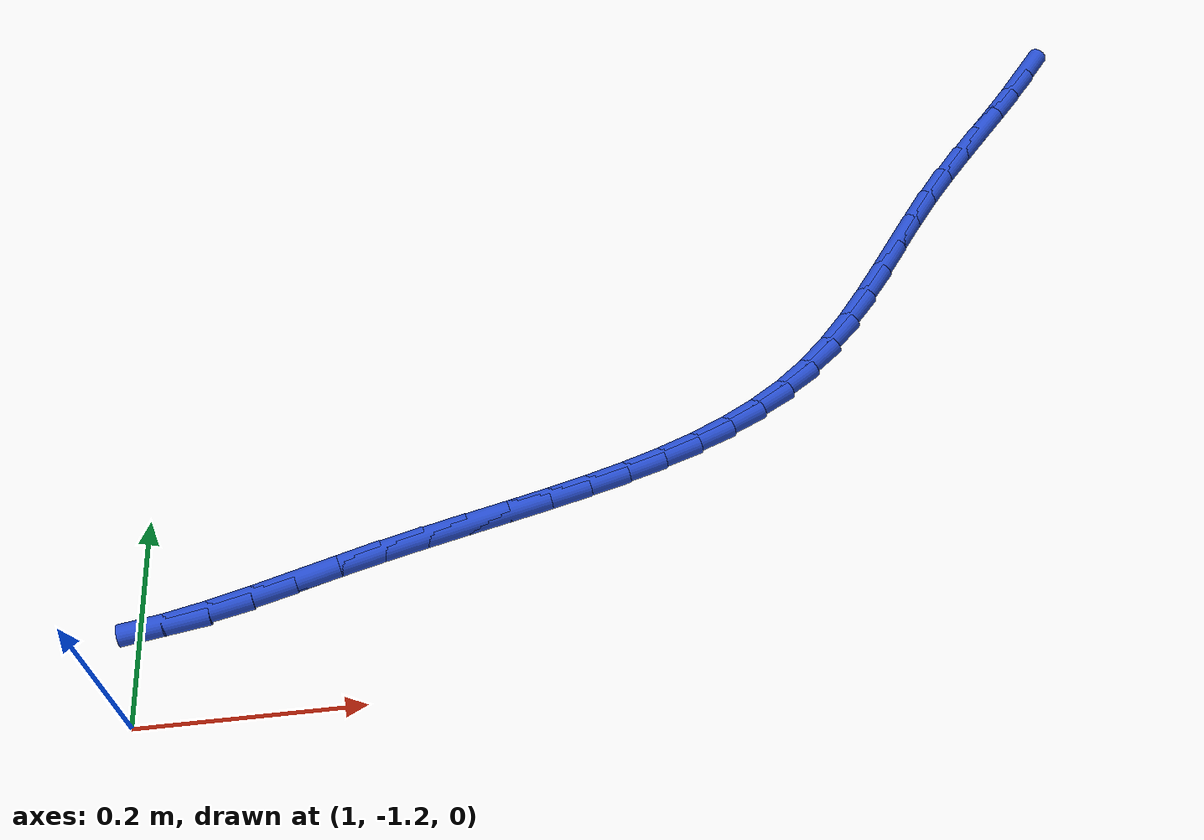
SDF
<sdf version="1.6">
 <world name="default">
  <model name="ground_plane">
   <static>1</static>
   <link name="link">
    <collision name="collision">
     <geometry><plane><normal>0 0 1</normal><size>100 100</size></plane></geometry>
     <surface><friction><ode><mu>100</mu><mu2>50</mu2></ode></friction></surface>
    </collision>
    <visual name="visual">
     <cast_shadows>0</cast_shadows>
     <geometry><plane><normal>0 0 1</normal><size>100 100</size></plane></geometry>
     <material>
      <script><uri>file://media/materials/scripts/gazebo.material</uri><name>Gazebo/WhiteGlow</name></script>
     </material>
    </visual>
   </link>
  </model>
  <model name="line">
   <link name="link_106">
    <pose>1.945905061161351 -0.5298927983858595 0.01 0 1.57 0.8780896600352804</pose>
    <collision name="collision">
     <geometry><cylinder><radius>0.01</radius><length>0.08</length></cylinder></geometry>
    </collision>
    <visual name="visual">
     <material>
      <script><name>Gazebo/Blue</name><uri>file://media/materials/scripts/gazebo.material</uri></script>
     </material>
     <geometry><cylinder><radius>0.01</radius><length>0.08</length></cylinder></geometry>
    </visual>
   </link>
   <link name="link_107">
    <pose>1.922250252735744 -0.5583961151190563 0.01 0 1.57 0.8476944145062164</pose>
    <collision name="collision">
     <geometry><cylinder><radius>0.01</radius><length>0.08</length></cylinder></geometry>
    </collision>
    <visual name="visual">
     <material>
      <script><name>Gazebo/Blue</name><uri>file://media/materials/scripts/gazebo.material</uri></script>
     </material>
     <geometry><cylinder><radius>0.01</radius><length>0.08</length></cylinder></geometry>
    </visual>
   </link>
   <link name="link_108">
    <pose>1.8976270090271914 -0.5862955649557715 0.01 0 1.57 0.8319195566522775</pose>
    <collision name="collision">
     <geometry><cylinder><radius>0.01</radius><length>0.08</length></cylinder></geometry>
    </collision>
    <visual name="visual">
     <material>
      <script><name>Gazebo/Blue</name><uri>file://media/materials/scripts/gazebo.material</uri></script>
     </material>
     <geometry><cylinder><radius>0.01</radius><length>0.08</length></cylinder></geometry>
    </visual>
   </link>
   <link name="link_109">
    <pose>1.87243988189082 -0.6139423751732529 0.01 0 1.57 0.8305521420777027</pose>
    <collision name="collision">
     <geometry><cylinder><radius>0.01</radius><length>0.08</length></cylinder></geometry>
    </collision>
    <visual name="visual">
     <material>
      <script><name>Gazebo/Blue</name><uri>file://media/materials/scripts/gazebo.material</uri></script>
     </material>
     <geometry><cylinder><radius>0.01</radius><length>0.08</length></cylinder></geometry>
    </visual>
   </link>
   <link name="link_110">
    <pose>1.8470934231817562 -0.6416877730487457 0.01 0 1.57 0.8433852470249344</pose>
    <collision name="collision">
     <geometry><cylinder><radius>0.01</radius><length>0.08</length></cylinder></geometry>
    </collision>
    <visual name="visual">
     <material>
      <script><name>Gazebo/Blue</name><uri>file://media/materials/scripts/gazebo.material</uri></script>
     </material>
     <geometry><cylinder><radius>0.01</radius><length>0.08</length></cylinder></geometry>
    </visual>
   </link>
   <link name="link_111">
    <pose>1.8219921847551248 -0.6698829858594975 0.01 0 1.57 0.8702265187306071</pose>
    <collision name="collision">
     <geometry><cylinder><radius>0.01</radius><length>0.08</length></cylinder></geometry>
    </collision>
    <visual name="visual">
     <material>
      <script><name>Gazebo/Blue</name><uri>file://media/materials/scripts/gazebo.material</uri></script>
     </material>
     <geometry><cylinder><radius>0.01</radius><length>0.08</length></cylinder></geometry>
    </visual>
   </link>
   <link name="link_112">
    <pose>1.797540718466052 -0.6988792408827547 0.01 0 1.57 0.9065402402060952</pose>
    <collision name="collision">
     <geometry><cylinder><radius>0.01</radius><length>0.08</length></cylinder></geometry>
    </collision>
    <visual name="visual">
     <material>
      <script><name>Gazebo/Blue</name><uri>file://media/materials/scripts/gazebo.material</uri></script>
     </material>
     <geometry><cylinder><radius>0.01</radius><length>0.08</length></cylinder></geometry>
    </visual>
   </link>
   <link name="link_113">
    <pose>1.7740333559186792 -0.7289034380376851 0.01 0 1.57 0.9308095016877311</pose>
    <collision name="collision">
     <geometry><cylinder><radius>0.01</radius><length>0.08</length></cylinder></geometry>
    </collision>
    <visual name="visual">
     <material>
      <script><name>Gazebo/Blue</name><uri>file://media/materials/scripts/gazebo.material</uri></script>
     </material>
     <geometry><cylinder><radius>0.01</radius><length>0.08</length></cylinder></geometry>
    </visual>
   </link>
   <link name="link_114">
    <pose>1.7512105427741786 -0.7595576993523603 0.01 0 1.57 0.9366721319215088</pose>
    <collision name="collision">
     <geometry><cylinder><radius>0.01</radius><length>0.08</length></cylinder></geometry>
    </collision>
    <visual name="visual">
     <material>
      <script><name>Gazebo/Blue</name><uri>file://media/materials/scripts/gazebo.material</uri></script>
     </material>
     <geometry><cylinder><radius>0.01</radius><length>0.08</length></cylinder></geometry>
    </visual>
   </link>
   <link name="link_115">
    <pose>1.7286391143397803 -0.7902483160846634 0.01 0 1.57 0.9240456704423754</pose>
    <collision name="collision">
     <geometry><cylinder><radius>0.01</radius><length>0.08</length></cylinder></geometry>
    </collision>
    <visual name="visual">
     <material>
      <script><name>Gazebo/Blue</name><uri>file://media/materials/scripts/gazebo.material</uri></script>
     </material>
     <geometry><cylinder><radius>0.01</radius><length>0.08</length></cylinder></geometry>
    </visual>
   </link>
   <link name="link_116">
    <pose>1.7058858450876198 -0.8203815108710857 0.01 0 1.57 0.8922225173752335</pose>
    <collision name="collision">
     <geometry><cylinder><radius>0.01</radius><length>0.08</length></cylinder></geometry>
    </collision>
    <visual name="visual">
     <material>
      <script><name>Gazebo/Blue</name><uri>file://media/materials/scripts/gazebo.material</uri></script>
     </material>
     <geometry><cylinder><radius>0.01</radius><length>0.08</length></cylinder></geometry>
    </visual>
   </link>
   <link name="link_117">
    <pose>1.6825175094898308 -0.8493635063481205 0.01 0 1.57 0.8399459767029219</pose>
    <collision name="collision">
     <geometry><cylinder><radius>0.01</radius><length>0.08</length></cylinder></geometry>
    </collision>
    <visual name="visual">
     <material>
      <script><name>Gazebo/Blue</name><uri>file://media/materials/scripts/gazebo.material</uri></script>
     </material>
     <geometry><cylinder><radius>0.01</radius><length>0.08</length></cylinder></geometry>
    </visual>
   </link>
   <link name="link_118">
    <pose>1.6581008820185479 -0.8766005251522612 0.01 0 1.57 0.7657166346580935</pose>
    <collision name="collision">
     <geometry><cylinder><radius>0.01</radius><length>0.08</length></cylinder></geometry>
    </collision>
    <visual name="visual">
     <material>
      <script><name>Gazebo/Blue</name><uri>file://media/materials/scripts/gazebo.material</uri></script>
     </material>
     <geometry><cylinder><radius>0.01</radius><length>0.08</length></cylinder></geometry>
    </visual>
   </link>
   <link name="link_119">
    <pose>1.632202737145905 -0.9014987899199999 0.01 0 1.57 0.6725063881683716</pose>
    <collision name="collision">
     <geometry><cylinder><radius>0.01</radius><length>0.08</length></cylinder></geometry>
    </collision>
    <visual name="visual">
     <material>
      <script><name>Gazebo/Blue</name><uri>file://media/materials/scripts/gazebo.material</uri></script>
     </material>
     <geometry><cylinder><radius>0.01</radius><length>0.08</length></cylinder></geometry>
    </visual>
   </link>
   <link name="link_120">
    <pose>1.6044681476146676 -0.923585004664042 0.01 0 1.57 0.5812103315522368</pose>
    <collision name="collision">
     <geometry><cylinder><radius>0.01</radius><length>0.08</length></cylinder></geometry>
    </collision>
    <visual name="visual">
     <material>
      <script><name>Gazebo/Blue</name><uri>file://media/materials/scripts/gazebo.material</uri></script>
     </material>
     <geometry><cylinder><radius>0.01</radius><length>0.08</length></cylinder></geometry>
    </visual>
   </link>
   <link name="link_121">
    <pose>1.5749327249300242 -0.9429868144802231 0.01 0 1.57 0.49997055575486116</pose>
    <collision name="collision">
     <geometry><cylinder><radius>0.01</radius><length>0.08</length></cylinder></geometry>
    </collision>
    <visual name="visual">
     <material>
      <script><name>Gazebo/Blue</name><uri>file://media/materials/scripts/gazebo.material</uri></script>
     </material>
     <geometry><cylinder><radius>0.01</radius><length>0.08</length></cylinder></geometry>
    </visual>
   </link>
   <link name="link_122">
    <pose>1.543753601792409 -0.9600188550674202 0.01 0 1.57 0.42989406703826355</pose>
    <collision name="collision">
     <geometry><cylinder><radius>0.01</radius><length>0.08</length></cylinder></geometry>
    </collision>
    <visual name="visual">
     <material>
      <script><name>Gazebo/Blue</name><uri>file://media/materials/scripts/gazebo.material</uri></script>
     </material>
     <geometry><cylinder><radius>0.01</radius><length>0.08</length></cylinder></geometry>
    </visual>
   </link>
   <link name="link_123">
    <pose>1.5110879497209562 -0.9749958218567407 0.01 0 1.57 0.37130789288554594</pose>
    <collision name="collision">
     <geometry><cylinder><radius>0.01</radius><length>0.08</length></cylinder></geometry>
    </collision>
    <visual name="visual">
     <material>
      <script><name>Gazebo/Blue</name><uri>file://media/materials/scripts/gazebo.material</uri></script>
     </material>
     <geometry><cylinder><radius>0.01</radius><length>0.08</length></cylinder></geometry>
    </visual>
   </link>
   <link name="link_124">
    <pose>1.477092940234803 -0.9882324102792942 0.01 0 1.57 0.32401391631032334</pose>
    <collision name="collision">
     <geometry><cylinder><radius>0.01</radius><length>0.08</length></cylinder></geometry>
    </collision>
    <visual name="visual">
     <material>
      <script><name>Gazebo/Blue</name><uri>file://media/materials/scripts/gazebo.material</uri></script>
     </material>
     <geometry><cylinder><radius>0.01</radius><length>0.08</length></cylinder></geometry>
    </visual>
   </link>
   <link name="link_125">
    <pose>1.4419257448530836 -1.0000433157661885 0.01 0 1.57 0.2875284988395737</pose>
    <collision name="collision">
     <geometry><cylinder><radius>0.01</radius><length>0.08</length></cylinder></geometry>
    </collision>
    <visual name="visual">
     <material>
      <script><name>Gazebo/Blue</name><uri>file://media/materials/scripts/gazebo.material</uri></script>
     </material>
     <geometry><cylinder><radius>0.01</radius><length>0.08</length></cylinder></geometry>
    </visual>
   </link>
   <link name="link_126">
    <pose>1.405743535094932 -1.0107432337485318 0.01 0 1.57 0.26126463634830865</pose>
    <collision name="collision">
     <geometry><cylinder><radius>0.01</radius><length>0.08</length></cylinder></geometry>
    </collision>
    <visual name="visual">
     <material>
      <script><name>Gazebo/Blue</name><uri>file://media/materials/scripts/gazebo.material</uri></script>
     </material>
     <geometry><cylinder><radius>0.01</radius><length>0.08</length></cylinder></geometry>
    </visual>
   </link>
   <link name="link_127">
    <pose>1.3687034824794868 -1.0206468596574332 0.01 0 1.57 0.24465065919866008</pose>
    <collision name="collision">
     <geometry><cylinder><radius>0.01</radius><length>0.08</length></cylinder></geometry>
    </collision>
    <visual name="visual">
     <material>
      <script><name>Gazebo/Blue</name><uri>file://media/materials/scripts/gazebo.material</uri></script>
     </material>
     <geometry><cylinder><radius>0.01</radius><length>0.08</length></cylinder></geometry>
    </visual>
   </link>
   <link name="link_128">
    <pose>1.330962758525881 -1.0300688889240002 0.01 0 1.57 0.23719696290094783</pose>
    <collision name="collision">
     <geometry><cylinder><radius>0.01</radius><length>0.08</length></cylinder></geometry>
    </collision>
    <visual name="visual">
     <material>
      <script><name>Gazebo/Blue</name><uri>file://media/materials/scripts/gazebo.material</uri></script>
     </material>
     <geometry><cylinder><radius>0.01</radius><length>0.08</length></cylinder></geometry>
    </visual>
   </link>
   <link name="link_129">
    <pose>1.2926785347532512 -1.039324016979342 0.01 0 1.57 0.2385256209145987</pose>
    <collision name="collision">
     <geometry><cylinder><radius>0.01</radius><length>0.08</length></cylinder></geometry>
    </collision>
    <visual name="visual">
     <material>
      <script><name>Gazebo/Blue</name><uri>file://media/materials/scripts/gazebo.material</uri></script>
     </material>
     <geometry><cylinder><radius>0.01</radius><length>0.08</length></cylinder></geometry>
    </visual>
   </link>
   <link name="link_130">
    <pose>1.2540079826807322 -1.0487269392545666 0.01 0 1.57 0.2483747846469295</pose>
    <collision name="collision">
     <geometry><cylinder><radius>0.01</radius><length>0.08</length></cylinder></geometry>
    </collision>
    <visual name="visual">
     <material>
      <script><name>Gazebo/Blue</name><uri>file://media/materials/scripts/gazebo.material</uri></script>
     </material>
     <geometry><cylinder><radius>0.01</radius><length>0.08</length></cylinder></geometry>
    </visual>
   </link>
   <link name="link_131">
    <pose>1.2151082738274588 -1.058592351180783 0.01 0 1.57 0.26644271284836685</pose>
    <collision name="collision">
     <geometry><cylinder><radius>0.01</radius><length>0.08</length></cylinder></geometry>
    </collision>
    <visual name="visual">
     <material>
      <script><name>Gazebo/Blue</name><uri>file://media/materials/scripts/gazebo.material</uri></script>
     </material>
     <geometry><cylinder><radius>0.01</radius><length>0.08</length></cylinder></geometry>
    </visual>
   </link>
   <link name="link_132">
    <pose>1.176136722856252 -1.0692289395451937 0.01 0 1.57 0.2829795286035578</pose>
    <collision name="collision">
     <geometry><cylinder><radius>0.01</radius><length>0.08</length></cylinder></geometry>
    </collision>
    <visual name="visual">
     <material>
      <script><name>Gazebo/Blue</name><uri>file://media/materials/scripts/gazebo.material</uri></script>
     </material>
     <geometry><cylinder><radius>0.01</radius><length>0.08</length></cylinder></geometry>
    </visual>
   </link>
   <link name="link_133">
    <pose>1.1372604569731448 -1.0805334967633529 0.01 0 1.57 0.2824021498190154</pose>
    <collision name="collision">
     <geometry><cylinder><radius>0.01</radius><length>0.08</length></cylinder></geometry>
    </collision>
    <visual name="visual">
     <material>
      <script><name>Gazebo/Blue</name><uri>file://media/materials/scripts/gazebo.material</uri></script>
     </material>
     <geometry><cylinder><radius>0.01</radius><length>0.08</length></cylinder></geometry>
    </visual>
   </link>
   <link name="link_134">
    <pose>1.0986625617330452 -1.0917329426256936 0.01 0 1.57 0.26281586069017104</pose>
    <collision name="collision">
     <geometry><cylinder><radius>0.01</radius><length>0.08</length></cylinder></geometry>
    </collision>
    <visual name="visual">
     <material>
      <script><name>Gazebo/Blue</name><uri>file://media/materials/scripts/gazebo.material</uri></script>
     </material>
     <geometry><cylinder><radius>0.01</radius><length>0.08</length></cylinder></geometry>
    </visual>
   </link>
   <link name="link_135">
    <pose>1.0605275868740207 -1.1019927359140127 0.01 0 1.57 0.2226067033181213</pose>
    <collision name="collision">
     <geometry><cylinder><radius>0.01</radius><length>0.08</length></cylinder></geometry>
    </collision>
    <visual name="visual">
     <material>
      <script><name>Gazebo/Blue</name><uri>file://media/materials/scripts/gazebo.material</uri></script>
     </material>
     <geometry><cylinder><radius>0.01</radius><length>0.08</length></cylinder></geometry>
    </visual>
   </link>
   <link name="link_136">
    <pose>1.02304008213414 -1.1104783354101093 0.01 0 1.57 0.15897409858286263</pose>
    <collision name="collision">
     <geometry><cylinder><radius>0.01</radius><length>0.08</length></cylinder></geometry>
    </collision>
    <visual name="visual">
     <material>
      <script><name>Gazebo/Blue</name><uri>file://media/materials/scripts/gazebo.material</uri></script>
     </material>
     <geometry><cylinder><radius>0.01</radius><length>0.08</length></cylinder></geometry>
    </visual>
   </link>
  </model>
 </world>
</sdf>
